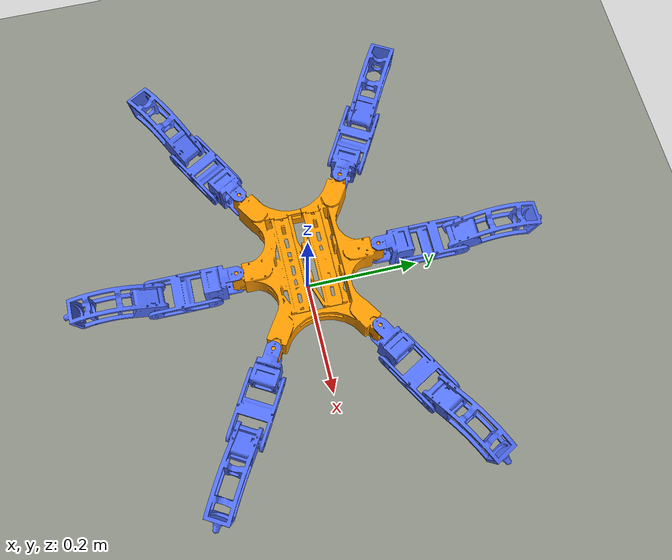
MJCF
<mujoco model="antsy">
  <compiler angle="radian" coordinate="local" autolimits="true"/>

  <option timestep="0.002" gravity="0 0 -9.81" integrator="RK4"/>

  <default>
    <joint damping="0.1" frictionloss="0.03" armature="0.001"/>
    <geom contype="1" conaffinity="1" friction="1.2 0.10 0.001" rgba="0.33 0.45 1.0 0"/>
    <position kp="17.8" forcelimited="true" forcerange="-4.25 4.25"/>
    <default class="visual">
      <geom type="mesh" contype="0" conaffinity="0" density="0" group="2"/>
    </default>
  </default>

  <asset>
    <mesh name="base_visual_mesh" file="meshes/frame_visual_low.stl" scale="0.001 0.001 0.001"/>
    <mesh name="coxa_visual_mesh" file="meshes/coxa_visual_low.stl" scale="0.001 0.001 0.001"/>
    <mesh name="tibia_visual_mesh" file="meshes/tibia_visual_low.stl" scale="0.001 0.001 0.001"/>
    <mesh name="foot_visual_mesh" file="meshes/foot_visual_low.stl" scale="0.001 0.001 0.001"/>
  </asset>

  <worldbody>
    <light name="sun" pos="0 0 2.0" dir="0 0 -1"/>
    <geom name="floor" type="plane" size="5 5 0.05" rgba="0.55 0.56 0.52 1"/>

    <body name="base_link" pos="0 0 0.105">
      <freejoint name="base_free"/>
      <geom name="base" type="box" size="0.150 0.100 0.025" mass="0.9" rgba="1.0 0.6 0.0 0"/>
      <geom name="base_visual" class="visual" mesh="base_visual_mesh" euler="0 0 1.5707963268" rgba="1.0 0.6 0.0 1"/>

      <body name="leg_0" pos="0.138 0.0875 0" euler="0 0 0.5235963268">
        <body name="leg_0a">
          <joint name="leg_0_base__leg_0a" type="hinge" axis="0 0 1" range="-1.5708 1.5708"/>
          <geom name="leg_0a_geom" type="capsule" fromto="0 0 0 0.04375 0 0" size="0.018" mass="0.09"/>
          <geom name="leg_0a_visual" class="visual" mesh="coxa_visual_mesh" rgba="0.33 0.45 1.0 1"/>
          <body name="leg_0b" pos="0.04375 0 -0.010">
            <joint name="leg_0a__leg_0b" type="hinge" axis="0 -1 0" range="-1.309 2.00713"/>
            <geom name="leg_0b_geom" type="capsule" fromto="0 0 0 0.100 0 0" size="0.015" mass="0.08"/>
            <geom name="leg_0b_visual" class="visual" mesh="tibia_visual_mesh" rgba="0.33 0.45 1.0 1"/>
            <body name="leg_0c" pos="0.100 0 0">
              <joint name="leg_0b__leg_0c" type="hinge" axis="0 1 0" range="-2.0944 2.35619"/>
              <geom name="leg_0c_geom" type="capsule" fromto="0 0 0 0.150 0 0" size="0.014" mass="0.03"/>
              <geom name="foot_0" type="sphere" pos="0.150 0 0" size="0.013" mass="0.005"/>
              <geom name="leg_0c_visual" class="visual" mesh="foot_visual_mesh" euler="0 -0.35 0" rgba="0.33 0.45 1.0 1"/>
            </body>
          </body>
        </body>
      </body>

      <body name="leg_1" pos="0 0.1195 0" euler="0 0 1.5707963268">
        <body name="leg_1a">
          <joint name="leg_1_base__leg_1a" type="hinge" axis="0 0 1" range="-1.5708 1.5708"/>
          <geom name="leg_1a_geom" type="capsule" fromto="0 0 0 0.04375 0 0" size="0.018" mass="0.09"/>
          <geom name="leg_1a_visual" class="visual" mesh="coxa_visual_mesh" rgba="0.33 0.45 1.0 1"/>
          <body name="leg_1b" pos="0.04375 0 -0.010">
            <joint name="leg_1a__leg_1b" type="hinge" axis="0 -1 0" range="-1.309 2.00713"/>
            <geom name="leg_1b_geom" type="capsule" fromto="0 0 0 0.100 0 0" size="0.015" mass="0.08"/>
            <geom name="leg_1b_visual" class="visual" mesh="tibia_visual_mesh" rgba="0.33 0.45 1.0 1"/>
            <body name="leg_1c" pos="0.100 0 0">
              <joint name="leg_1b__leg_1c" type="hinge" axis="0 1 0" range="-2.0944 2.35619"/>
              <geom name="leg_1c_geom" type="capsule" fromto="0 0 0 0.150 0 0" size="0.014" mass="0.03"/>
              <geom name="foot_1" type="sphere" pos="0.150 0 0" size="0.013" mass="0.005"/>
              <geom name="leg_1c_visual" class="visual" mesh="foot_visual_mesh" euler="0 -0.35 0" rgba="0.33 0.45 1.0 1"/>
            </body>
          </body>
        </body>
      </body>

      <body name="leg_2" pos="-0.138 0.0875 0" euler="0 0 2.6179963268">
        <body name="leg_2a">
          <joint name="leg_2_base__leg_2a" type="hinge" axis="0 0 1" range="-1.5708 1.5708"/>
          <geom name="leg_2a_geom" type="capsule" fromto="0 0 0 0.04375 0 0" size="0.018" mass="0.09"/>
          <geom name="leg_2a_visual" class="visual" mesh="coxa_visual_mesh" rgba="0.33 0.45 1.0 1"/>
          <body name="leg_2b" pos="0.04375 0 -0.010">
            <joint name="leg_2a__leg_2b" type="hinge" axis="0 -1 0" range="-1.309 2.00713"/>
            <geom name="leg_2b_geom" type="capsule" fromto="0 0 0 0.100 0 0" size="0.015" mass="0.08"/>
            <geom name="leg_2b_visual" class="visual" mesh="tibia_visual_mesh" rgba="0.33 0.45 1.0 1"/>
            <body name="leg_2c" pos="0.100 0 0">
              <joint name="leg_2b__leg_2c" type="hinge" axis="0 1 0" range="-2.0944 2.35619"/>
              <geom name="leg_2c_geom" type="capsule" fromto="0 0 0 0.150 0 0" size="0.014" mass="0.03"/>
              <geom name="foot_2" type="sphere" pos="0.150 0 0" size="0.013" mass="0.005"/>
              <geom name="leg_2c_visual" class="visual" mesh="foot_visual_mesh" euler="0 -0.35 0" rgba="0.33 0.45 1.0 1"/>
            </body>
          </body>
        </body>
      </body>

      <body name="leg_3" pos="-0.138 -0.0875 0" euler="0 0 -2.6179963268">
        <body name="leg_3a">
          <joint name="leg_3_base__leg_3a" type="hinge" axis="0 0 1" range="-1.5708 1.5708"/>
          <geom name="leg_3a_geom" type="capsule" fromto="0 0 0 0.04375 0 0" size="0.018" mass="0.09"/>
          <geom name="leg_3a_visual" class="visual" mesh="coxa_visual_mesh" rgba="0.33 0.45 1.0 1"/>
          <body name="leg_3b" pos="0.04375 0 -0.010">
            <joint name="leg_3a__leg_3b" type="hinge" axis="0 1 0" range="-1.309 2.00713"/>
            <geom name="leg_3b_geom" type="capsule" fromto="0 0 0 0.100 0 0" size="0.015" mass="0.08"/>
            <geom name="leg_3b_visual" class="visual" mesh="tibia_visual_mesh" rgba="0.33 0.45 1.0 1"/>
            <body name="leg_3c" pos="0.100 0 0">
              <joint name="leg_3b__leg_3c" type="hinge" axis="0 -1 0" range="-2.0944 2.35619"/>
              <geom name="leg_3c_geom" type="capsule" fromto="0 0 0 0.150 0 0" size="0.014" mass="0.03"/>
              <geom name="foot_3" type="sphere" pos="0.150 0 0" size="0.013" mass="0.005"/>
              <geom name="leg_3c_visual" class="visual" mesh="foot_visual_mesh" euler="0 -0.35 0" rgba="0.33 0.45 1.0 1"/>
            </body>
          </body>
        </body>
      </body>

      <body name="leg_4" pos="0 -0.1195 0" euler="0 0 -1.5707963268">
        <body name="leg_4a">
          <joint name="leg_4_base__leg_4a" type="hinge" axis="0 0 1" range="-1.5708 1.5708"/>
          <geom name="leg_4a_geom" type="capsule" fromto="0 0 0 0.04375 0 0" size="0.018" mass="0.09"/>
          <geom name="leg_4a_visual" class="visual" mesh="coxa_visual_mesh" rgba="0.33 0.45 1.0 1"/>
          <body name="leg_4b" pos="0.04375 0 -0.010">
            <joint name="leg_4a__leg_4b" type="hinge" axis="0 1 0" range="-1.309 2.00713"/>
            <geom name="leg_4b_geom" type="capsule" fromto="0 0 0 0.100 0 0" size="0.015" mass="0.08"/>
            <geom name="leg_4b_visual" class="visual" mesh="tibia_visual_mesh" rgba="0.33 0.45 1.0 1"/>
            <body name="leg_4c" pos="0.100 0 0">
              <joint name="leg_4b__leg_4c" type="hinge" axis="0 -1 0" range="-2.0944 2.35619"/>
              <geom name="leg_4c_geom" type="capsule" fromto="0 0 0 0.150 0 0" size="0.014" mass="0.03"/>
              <geom name="foot_4" type="sphere" pos="0.150 0 0" size="0.013" mass="0.005"/>
              <geom name="leg_4c_visual" class="visual" mesh="foot_visual_mesh" euler="0 -0.35 0" rgba="0.33 0.45 1.0 1"/>
            </body>
          </body>
        </body>
      </body>

      <body name="leg_5" pos="0.138 -0.0875 0" euler="0 0 -0.5235963268">
        <body name="leg_5a">
          <joint name="leg_5_base__leg_5a" type="hinge" axis="0 0 1" range="-1.5708 1.5708"/>
          <geom name="leg_5a_geom" type="capsule" fromto="0 0 0 0.04375 0 0" size="0.018" mass="0.09"/>
          <geom name="leg_5a_visual" class="visual" mesh="coxa_visual_mesh" rgba="0.33 0.45 1.0 1"/>
          <body name="leg_5b" pos="0.04375 0 -0.010">
            <joint name="leg_5a__leg_5b" type="hinge" axis="0 1 0" range="-1.309 2.00713"/>
            <geom name="leg_5b_geom" type="capsule" fromto="0 0 0 0.100 0 0" size="0.015" mass="0.08"/>
            <geom name="leg_5b_visual" class="visual" mesh="tibia_visual_mesh" rgba="0.33 0.45 1.0 1"/>
            <body name="leg_5c" pos="0.100 0 0">
              <joint name="leg_5b__leg_5c" type="hinge" axis="0 -1 0" range="-2.0944 2.35619"/>
              <geom name="leg_5c_geom" type="capsule" fromto="0 0 0 0.150 0 0" size="0.014" mass="0.03"/>
              <geom name="foot_5" type="sphere" pos="0.150 0 0" size="0.013" mass="0.005"/>
              <geom name="leg_5c_visual" class="visual" mesh="foot_visual_mesh" euler="0 -0.35 0" rgba="0.33 0.45 1.0 1"/>
            </body>
          </body>
        </body>
      </body>
    </body>
  </worldbody>

  <actuator>
    <position name="leg_0_base__leg_0a_pos" joint="leg_0_base__leg_0a" ctrlrange="-1.5708 1.5708"/>
    <position name="leg_0a__leg_0b_pos" joint="leg_0a__leg_0b" ctrlrange="-1.309 2.00713"/>
    <position name="leg_0b__leg_0c_pos" joint="leg_0b__leg_0c" ctrlrange="-2.0944 2.35619"/>
    <position name="leg_1_base__leg_1a_pos" joint="leg_1_base__leg_1a" ctrlrange="-1.5708 1.5708"/>
    <position name="leg_1a__leg_1b_pos" joint="leg_1a__leg_1b" ctrlrange="-1.309 2.00713"/>
    <position name="leg_1b__leg_1c_pos" joint="leg_1b__leg_1c" ctrlrange="-2.0944 2.35619"/>
    <position name="leg_2_base__leg_2a_pos" joint="leg_2_base__leg_2a" ctrlrange="-1.5708 1.5708"/>
    <position name="leg_2a__leg_2b_pos" joint="leg_2a__leg_2b" ctrlrange="-1.309 2.00713"/>
    <position name="leg_2b__leg_2c_pos" joint="leg_2b__leg_2c" ctrlrange="-2.0944 2.35619"/>
    <position name="leg_3_base__leg_3a_pos" joint="leg_3_base__leg_3a" ctrlrange="-1.5708 1.5708"/>
    <position name="leg_3a__leg_3b_pos" joint="leg_3a__leg_3b" ctrlrange="-1.309 2.00713"/>
    <position name="leg_3b__leg_3c_pos" joint="leg_3b__leg_3c" ctrlrange="-2.0944 2.35619"/>
    <position name="leg_4_base__leg_4a_pos" joint="leg_4_base__leg_4a" ctrlrange="-1.5708 1.5708"/>
    <position name="leg_4a__leg_4b_pos" joint="leg_4a__leg_4b" ctrlrange="-1.309 2.00713"/>
    <position name="leg_4b__leg_4c_pos" joint="leg_4b__leg_4c" ctrlrange="-2.0944 2.35619"/>
    <position name="leg_5_base__leg_5a_pos" joint="leg_5_base__leg_5a" ctrlrange="-1.5708 1.5708"/>
    <position name="leg_5a__leg_5b_pos" joint="leg_5a__leg_5b" ctrlrange="-1.309 2.00713"/>
    <position name="leg_5b__leg_5c_pos" joint="leg_5b__leg_5c" ctrlrange="-2.0944 2.35619"/>
  </actuator>
</mujoco>
